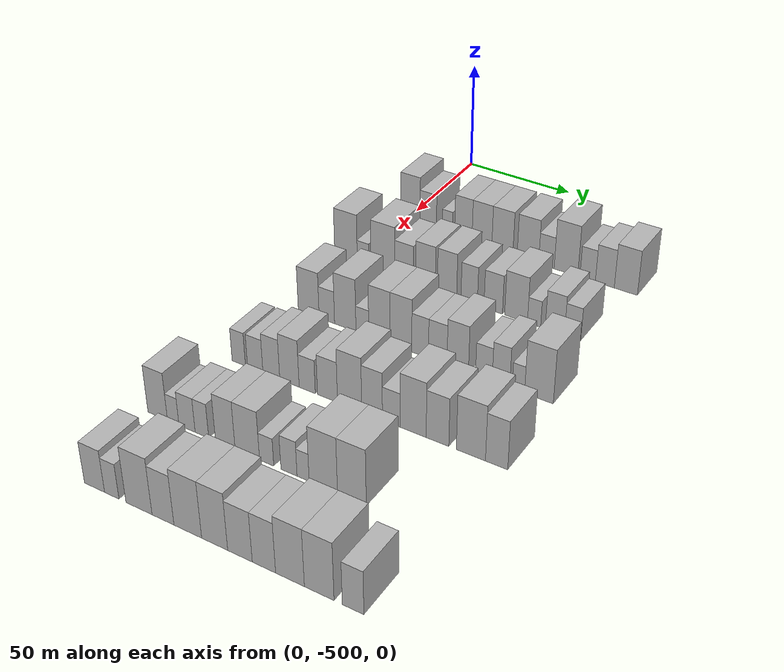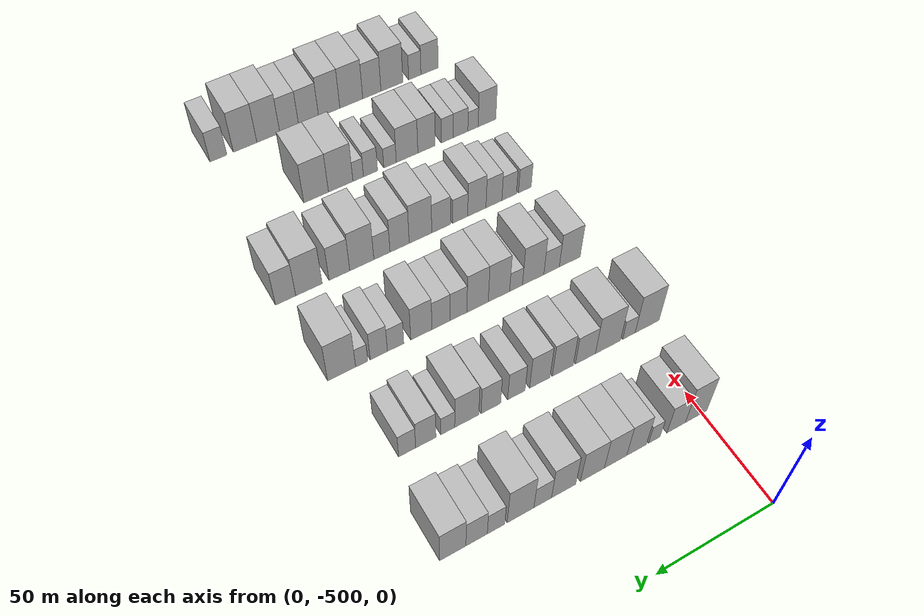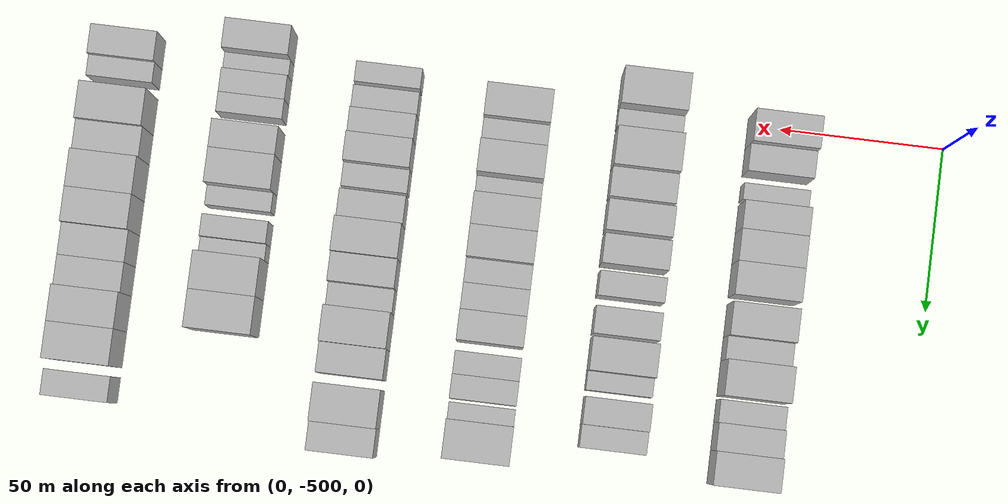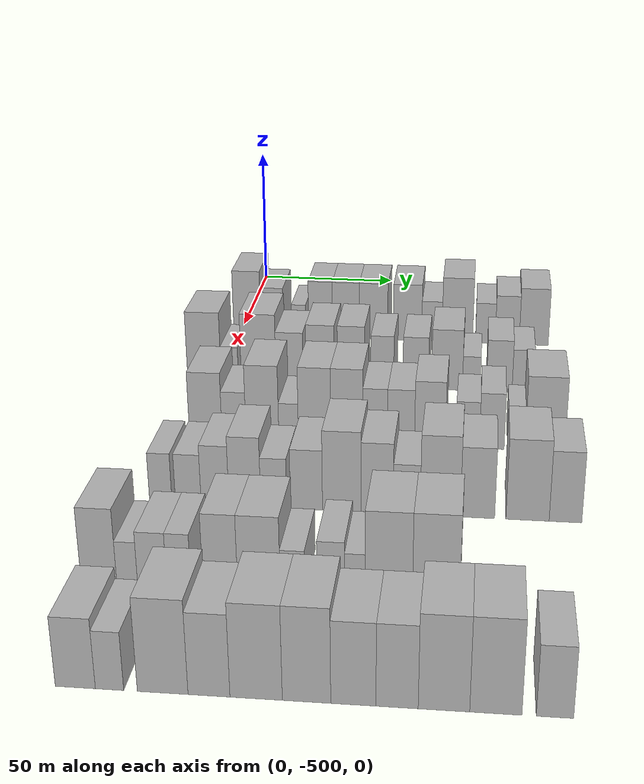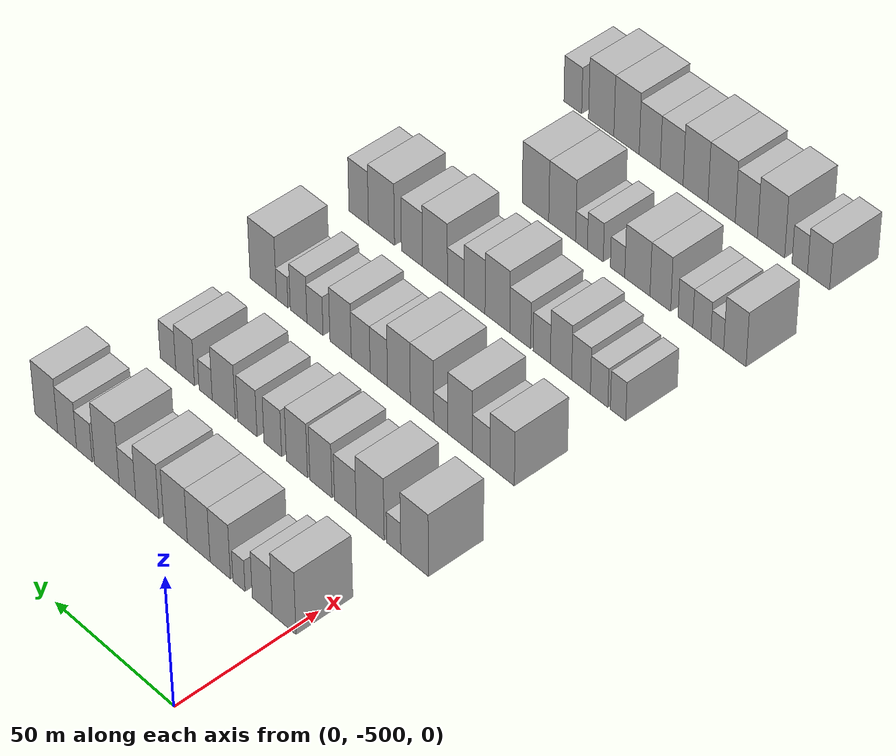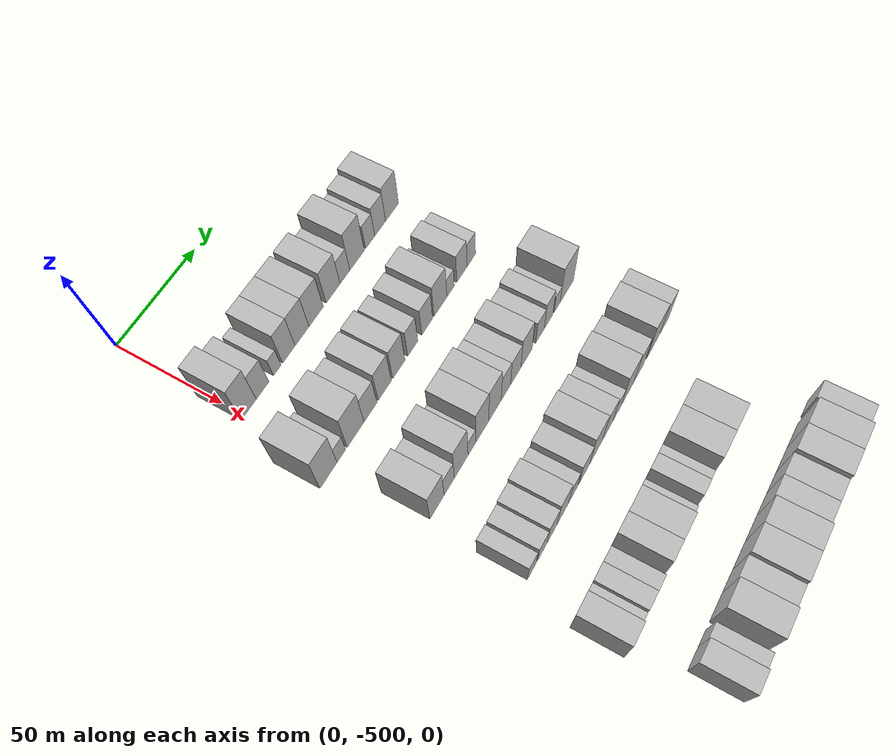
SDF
<sdf version="1.6">
 <world name="default">
  <model name="building_15">
   <static>1</static>
   <pose>50.0000 -497.2800 0 0.000000 0.000000 0.000000</pose>
   <link name="link">
    <pose>0 0 12.00 0 0 0</pose>
    <collision name="collision"><geometry><box><size>20.0000 9.7236 24.0000</size></box></geometry></collision>
    <visual name="visual">
     <cast_shadows>0</cast_shadows>
     <geometry><box><size>20.0000 9.7236 24.0000</size></box></geometry>
     <material>
      <script>
       <uri>model://HANNAS_wall/materials/scripts</uri>
       <uri>model://HANNAS_wall/materials/textures</uri>
       <name>vrc/HANNAS_wall</name>
      </script>
     </material>
    </visual>
   </link>
  </model>
  <model name="building_16">
   <static>1</static>
   <pose>50.0000 -488.3094 0 0.000000 0.000000 0.000000</pose>
   <link name="link">
    <pose>0 0 9.00 0 0 0</pose>
    <collision name="collision"><geometry><box><size>20.0000 8.2177 18.0000</size></box></geometry></collision>
    <visual name="visual">
     <cast_shadows>0</cast_shadows>
     <geometry><box><size>20.0000 8.2177 18.0000</size></box></geometry>
     <material>
      <script>
       <uri>model://HANNAS_wall/materials/scripts</uri>
       <uri>model://HANNAS_wall/materials/textures</uri>
       <name>vrc/HANNAS_wall</name>
      </script>
     </material>
    </visual>
   </link>
  </model>
  <model name="building_17">
   <static>1</static>
   <pose>50.0000 -478.6717 0 0.000000 0.000000 0.000000</pose>
   <link name="link">
    <pose>0 0 6.00 0 0 0</pose>
    <collision name="collision"><geometry><box><size>20.0000 5.0578 12.0000</size></box></geometry></collision>
    <visual name="visual">
     <cast_shadows>0</cast_shadows>
     <geometry><box><size>20.0000 5.0578 12.0000</size></box></geometry>
     <material>
      <script>
       <uri>model://HANNAS_wall/materials/scripts</uri>
       <uri>model://HANNAS_wall/materials/textures</uri>
       <name>vrc/HANNAS_wall</name>
      </script>
     </material>
    </visual>
   </link>
  </model>
  <model name="building_18">
   <static>1</static>
   <pose>50.0000 -470.8829 0 0.000000 0.000000 0.000000</pose>
   <link name="link">
    <pose>0 0 10.50 0 0 0</pose>
    <collision name="collision"><geometry><box><size>20.0000 8.5197 21.0000</size></box></geometry></collision>
    <visual name="visual">
     <cast_shadows>0</cast_shadows>
     <geometry><box><size>20.0000 8.5197 21.0000</size></box></geometry>
     <material>
      <script>
       <uri>model://HANNAS_wall/materials/scripts</uri>
       <uri>model://HANNAS_wall/materials/textures</uri>
       <name>vrc/HANNAS_wall</name>
      </script>
     </material>
    </visual>
   </link>
  </model>
  <model name="building_19">
   <static>1</static>
   <pose>50.0000 -461.8293 0 0.000000 0.000000 0.000000</pose>
   <link name="link">
    <pose>0 0 10.50 0 0 0</pose>
    <collision name="collision"><geometry><box><size>20.0000 9.5874 21.0000</size></box></geometry></collision>
    <visual name="visual">
     <cast_shadows>0</cast_shadows>
     <geometry><box><size>20.0000 9.5874 21.0000</size></box></geometry>
     <material>
      <script>
       <uri>model://HANNAS_wall/materials/scripts</uri>
       <uri>model://HANNAS_wall/materials/textures</uri>
       <name>vrc/HANNAS_wall</name>
      </script>
     </material>
    </visual>
   </link>
  </model>
  <model name="building_20">
   <static>1</static>
   <pose>50.0000 -451.9908 0 0.000000 0.000000 0.000000</pose>
   <link name="link">
    <pose>0 0 10.50 0 0 0</pose>
    <collision name="collision"><geometry><box><size>20.0000 10.0895 21.0000</size></box></geometry></collision>
    <visual name="visual">
     <cast_shadows>0</cast_shadows>
     <geometry><box><size>20.0000 10.0895 21.0000</size></box></geometry>
     <material>
      <script>
       <uri>model://HANNAS_wall/materials/scripts</uri>
       <uri>model://HANNAS_wall/materials/textures</uri>
       <name>vrc/HANNAS_wall</name>
      </script>
     </material>
    </visual>
   </link>
  </model>
  <model name="building_21">
   <static>1</static>
   <pose>50.0000 -439.9129 0 0.000000 0.000000 0.000000</pose>
   <link name="link">
    <pose>0 0 10.50 0 0 0</pose>
    <collision name="collision"><geometry><box><size>20.0000 10.0663 21.0000</size></box></geometry></collision>
    <visual name="visual">
     <cast_shadows>0</cast_shadows>
     <geometry><box><size>20.0000 10.0663 21.0000</size></box></geometry>
     <material>
      <script>
       <uri>model://HANNAS_wall/materials/scripts</uri>
       <uri>model://HANNAS_wall/materials/textures</uri>
       <name>vrc/HANNAS_wall</name>
      </script>
     </material>
    </visual>
   </link>
  </model>
  <model name="building_22">
   <static>1</static>
   <pose>50.0000 -431.2850 0 0.000000 0.000000 0.000000</pose>
   <link name="link">
    <pose>0 0 7.50 0 0 0</pose>
    <collision name="collision"><geometry><box><size>20.0000 7.1896 15.0000</size></box></geometry></collision>
    <visual name="visual">
     <cast_shadows>0</cast_shadows>
     <geometry><box><size>20.0000 7.1896 15.0000</size></box></geometry>
     <material>
      <script>
       <uri>model://HANNAS_wall/materials/scripts</uri>
       <uri>model://HANNAS_wall/materials/textures</uri>
       <name>vrc/HANNAS_wall</name>
      </script>
     </material>
    </visual>
   </link>
  </model>
  <model name="building_23">
   <static>1</static>
   <pose>50.0000 -422.3025 0 0.000000 0.000000 0.000000</pose>
   <link name="link">
    <pose>0 0 12.00 0 0 0</pose>
    <collision name="collision"><geometry><box><size>20.0000 10.7754 24.0000</size></box></geometry></collision>
    <visual name="visual">
     <cast_shadows>0</cast_shadows>
     <geometry><box><size>20.0000 10.7754 24.0000</size></box></geometry>
     <material>
      <script>
       <uri>model://HANNAS_wall/materials/scripts</uri>
       <uri>model://HANNAS_wall/materials/textures</uri>
       <name>vrc/HANNAS_wall</name>
      </script>
     </material>
    </visual>
   </link>
  </model>
  <model name="building_24">
   <static>1</static>
   <pose>50.0000 -412.4510 0 0.000000 0.000000 0.000000</pose>
   <link name="link">
    <pose>0 0 7.50 0 0 0</pose>
    <collision name="collision"><geometry><box><size>20.0000 6.9275 15.0000</size></box></geometry></collision>
    <visual name="visual">
     <cast_shadows>0</cast_shadows>
     <geometry><box><size>20.0000 6.9275 15.0000</size></box></geometry>
     <material>
      <script>
       <uri>model://HANNAS_wall/materials/scripts</uri>
       <uri>model://HANNAS_wall/materials/textures</uri>
       <name>vrc/HANNAS_wall</name>
      </script>
     </material>
    </visual>
   </link>
  </model>
  <model name="building_25">
   <static>1</static>
   <pose>50.0000 -404.7914 0 0.000000 0.000000 0.000000</pose>
   <link name="link">
    <pose>0 0 9.00 0 0 0</pose>
    <collision name="collision"><geometry><box><size>20.0000 8.3916 18.0000</size></box></geometry></collision>
    <visual name="visual">
     <cast_shadows>0</cast_shadows>
     <geometry><box><size>20.0000 8.3916 18.0000</size></box></geometry>
     <material>
      <script>
       <uri>model://HANNAS_wall/materials/scripts</uri>
       <uri>model://HANNAS_wall/materials/textures</uri>
       <name>vrc/HANNAS_wall</name>
      </script>
     </material>
    </visual>
   </link>
  </model>
  <model name="building_26">
   <static>1</static>
   <pose>50.0000 -395.5258 0 0.000000 0.000000 0.000000</pose>
   <link name="link">
    <pose>0 0 10.50 0 0 0</pose>
    <collision name="collision"><geometry><box><size>20.0000 10.1397 21.0000</size></box></geometry></collision>
    <visual name="visual">
     <cast_shadows>0</cast_shadows>
     <geometry><box><size>20.0000 10.1397 21.0000</size></box></geometry>
     <material>
      <script>
       <uri>model://HANNAS_wall/materials/scripts</uri>
       <uri>model://HANNAS_wall/materials/textures</uri>
       <name>vrc/HANNAS_wall</name>
      </script>
     </material>
    </visual>
   </link>
  </model>
  <model name="building_148">
   <static>1</static>
   <pose>90.0000 -504.5691 0 0.000000 0.000000 0.000000</pose>
   <link name="link">
    <pose>0 0 12.00 0 0 0</pose>
    <collision name="collision"><geometry><box><size>20.0000 11.2267 24.0000</size></box></geometry></collision>
    <visual name="visual">
     <cast_shadows>0</cast_shadows>
     <geometry><box><size>20.0000 11.2267 24.0000</size></box></geometry>
     <material>
      <script>
       <uri>model://HANNAS_wall/materials/scripts</uri>
       <uri>model://HANNAS_wall/materials/textures</uri>
       <name>vrc/HANNAS_wall</name>
      </script>
     </material>
    </visual>
   </link>
  </model>
  <model name="building_149">
   <static>1</static>
   <pose>90.0000 -496.0865 0 0.000000 0.000000 0.000000</pose>
   <link name="link">
    <pose>0 0 6.00 0 0 0</pose>
    <collision name="collision"><geometry><box><size>20.0000 5.7386 12.0000</size></box></geometry></collision>
    <visual name="visual">
     <cast_shadows>0</cast_shadows>
     <geometry><box><size>20.0000 5.7386 12.0000</size></box></geometry>
     <material>
      <script>
       <uri>model://HANNAS_wall/materials/scripts</uri>
       <uri>model://HANNAS_wall/materials/textures</uri>
       <name>vrc/HANNAS_wall</name>
      </script>
     </material>
    </visual>
   </link>
  </model>
  <model name="building_150">
   <static>1</static>
   <pose>90.0000 -486.4568 0 0.000000 0.000000 0.000000</pose>
   <link name="link">
    <pose>0 0 12.00 0 0 0</pose>
    <collision name="collision"><geometry><box><size>20.0000 11.5207 24.0000</size></box></geometry></collision>
    <visual name="visual">
     <cast_shadows>0</cast_shadows>
     <geometry><box><size>20.0000 11.5207 24.0000</size></box></geometry>
     <material>
      <script>
       <uri>model://HANNAS_wall/materials/scripts</uri>
       <uri>model://HANNAS_wall/materials/textures</uri>
       <name>vrc/HANNAS_wall</name>
      </script>
     </material>
    </visual>
   </link>
  </model>
  <model name="building_151">
   <static>1</static>
   <pose>90.0000 -476.1965 0 0.000000 0.000000 0.000000</pose>
   <link name="link">
    <pose>0 0 9.00 0 0 0</pose>
    <collision name="collision"><geometry><box><size>20.0000 8.9999 18.0000</size></box></geometry></collision>
    <visual name="visual">
     <cast_shadows>0</cast_shadows>
     <geometry><box><size>20.0000 8.9999 18.0000</size></box></geometry>
     <material>
      <script>
       <uri>model://HANNAS_wall/materials/scripts</uri>
       <uri>model://HANNAS_wall/materials/textures</uri>
       <name>vrc/HANNAS_wall</name>
      </script>
     </material>
    </visual>
   </link>
  </model>
  <model name="building_152">
   <static>1</static>
   <pose>90.0000 -466.0451 0 0.000000 0.000000 0.000000</pose>
   <link name="link">
    <pose>0 0 10.50 0 0 0</pose>
    <collision name="collision"><geometry><box><size>20.0000 9.3030 21.0000</size></box></geometry></collision>
    <visual name="visual">
     <cast_shadows>0</cast_shadows>
     <geometry><box><size>20.0000 9.3030 21.0000</size></box></geometry>
     <material>
      <script>
       <uri>model://HANNAS_wall/materials/scripts</uri>
       <uri>model://HANNAS_wall/materials/textures</uri>
       <name>vrc/HANNAS_wall</name>
      </script>
     </material>
    </visual>
   </link>
  </model>
  <model name="building_153">
   <static>1</static>
   <pose>90.0000 -455.9316 0 0.000000 0.000000 0.000000</pose>
   <link name="link">
    <pose>0 0 10.50 0 0 0</pose>
    <collision name="collision"><geometry><box><size>20.0000 8.9241 21.0000</size></box></geometry></collision>
    <visual name="visual">
     <cast_shadows>0</cast_shadows>
     <geometry><box><size>20.0000 8.9241 21.0000</size></box></geometry>
     <material>
      <script>
       <uri>model://HANNAS_wall/materials/scripts</uri>
       <uri>model://HANNAS_wall/materials/textures</uri>
       <name>vrc/HANNAS_wall</name>
      </script>
     </material>
    </visual>
   </link>
  </model>
  <model name="building_154">
   <static>1</static>
   <pose>90.0000 -445.7190 0 0.000000 0.000000 0.000000</pose>
   <link name="link">
    <pose>0 0 9.00 0 0 0</pose>
    <collision name="collision"><geometry><box><size>20.0000 7.5010 18.0000</size></box></geometry></collision>
    <visual name="visual">
     <cast_shadows>0</cast_shadows>
     <geometry><box><size>20.0000 7.5010 18.0000</size></box></geometry>
     <material>
      <script>
       <uri>model://HANNAS_wall/materials/scripts</uri>
       <uri>model://HANNAS_wall/materials/textures</uri>
       <name>vrc/HANNAS_wall</name>
      </script>
     </material>
    </visual>
   </link>
  </model>
  <model name="building_155">
   <static>1</static>
   <pose>90.0000 -434.8211 0 0.000000 0.000000 0.000000</pose>
   <link name="link">
    <pose>0 0 9.00 0 0 0</pose>
    <collision name="collision"><geometry><box><size>20.0000 8.2949 18.0000</size></box></geometry></collision>
    <visual name="visual">
     <cast_shadows>0</cast_shadows>
     <geometry><box><size>20.0000 8.2949 18.0000</size></box></geometry>
     <material>
      <script>
       <uri>model://HANNAS_wall/materials/scripts</uri>
       <uri>model://HANNAS_wall/materials/textures</uri>
       <name>vrc/HANNAS_wall</name>
      </script>
     </material>
    </visual>
   </link>
  </model>
  <model name="building_156">
   <static>1</static>
   <pose>90.0000 -424.6447 0 0.000000 0.000000 0.000000</pose>
   <link name="link">
    <pose>0 0 10.50 0 0 0</pose>
    <collision name="collision"><geometry><box><size>20.0000 10.0580 21.0000</size></box></geometry></collision>
    <visual name="visual">
     <cast_shadows>0</cast_shadows>
     <geometry><box><size>20.0000 10.0580 21.0000</size></box></geometry>
     <material>
      <script>
       <uri>model://HANNAS_wall/materials/scripts</uri>
       <uri>model://HANNAS_wall/materials/textures</uri>
       <name>vrc/HANNAS_wall</name>
      </script>
     </material>
    </visual>
   </link>
  </model>
  <model name="building_157">
   <static>1</static>
   <pose>90.0000 -416.7360 0 0.000000 0.000000 0.000000</pose>
   <link name="link">
    <pose>0 0 6.00 0 0 0</pose>
    <collision name="collision"><geometry><box><size>20.0000 5.7593 12.0000</size></box></geometry></collision>
    <visual name="visual">
     <cast_shadows>0</cast_shadows>
     <geometry><box><size>20.0000 5.7593 12.0000</size></box></geometry>
     <material>
      <script>
       <uri>model://HANNAS_wall/materials/scripts</uri>
       <uri>model://HANNAS_wall/materials/textures</uri>
       <name>vrc/HANNAS_wall</name>
      </script>
     </material>
    </visual>
   </link>
  </model>
  <model name="building_158">
   <static>1</static>
   <pose>90.0000 -407.7285 0 0.000000 0.000000 0.000000</pose>
   <link name="link">
    <pose>0 0 9.00 0 0 0</pose>
    <collision name="collision"><geometry><box><size>20.0000 8.2558 18.0000</size></box></geometry></collision>
    <visual name="visual">
     <cast_shadows>0</cast_shadows>
     <geometry><box><size>20.0000 8.2558 18.0000</size></box></geometry>
     <material>
      <script>
       <uri>model://HANNAS_wall/materials/scripts</uri>
       <uri>model://HANNAS_wall/materials/textures</uri>
       <name>vrc/HANNAS_wall</name>
      </script>
     </material>
    </visual>
   </link>
  </model>
  <model name="building_159">
   <static>1</static>
   <pose>90.0000 -400.1436 0 0.000000 0.000000 0.000000</pose>
   <link name="link">
    <pose>0 0 7.50 0 0 0</pose>
    <collision name="collision"><geometry><box><size>20.0000 6.9140 15.0000</size></box></geometry></collision>
    <visual name="visual">
     <cast_shadows>0</cast_shadows>
     <geometry><box><size>20.0000 6.9140 15.0000</size></box></geometry>
     <material>
      <script>
       <uri>model://HANNAS_wall/materials/scripts</uri>
       <uri>model://HANNAS_wall/materials/textures</uri>
       <name>vrc/HANNAS_wall</name>
      </script>
     </material>
    </visual>
   </link>
  </model>
  <model name="building_279">
   <static>1</static>
   <pose>130.0000 -495.8659 0 0.000000 0.000000 0.000000</pose>
   <link name="link">
    <pose>0 0 10.50 0 0 0</pose>
    <collision name="collision"><geometry><box><size>20.0000 9.9611 21.0000</size></box></geometry></collision>
    <visual name="visual">
     <cast_shadows>0</cast_shadows>
     <geometry><box><size>20.0000 9.9611 21.0000</size></box></geometry>
     <material>
      <script>
       <uri>model://HANNAS_wall/materials/scripts</uri>
       <uri>model://HANNAS_wall/materials/textures</uri>
       <name>vrc/HANNAS_wall</name>
      </script>
     </material>
    </visual>
   </link>
  </model>
  <model name="building_280">
   <static>1</static>
   <pose>130.0000 -487.2373 0 0.000000 0.000000 0.000000</pose>
   <link name="link">
    <pose>0 0 7.50 0 0 0</pose>
    <collision name="collision"><geometry><box><size>20.0000 7.2961 15.0000</size></box></geometry></collision>
    <visual name="visual">
     <cast_shadows>0</cast_shadows>
     <geometry><box><size>20.0000 7.2961 15.0000</size></box></geometry>
     <material>
      <script>
       <uri>model://HANNAS_wall/materials/scripts</uri>
       <uri>model://HANNAS_wall/materials/textures</uri>
       <name>vrc/HANNAS_wall</name>
      </script>
     </material>
    </visual>
   </link>
  </model>
  <model name="building_281">
   <static>1</static>
   <pose>130.0000 -478.6068 0 0.000000 0.000000 0.000000</pose>
   <link name="link">
    <pose>0 0 12.00 0 0 0</pose>
    <collision name="collision"><geometry><box><size>20.0000 9.9650 24.0000</size></box></geometry></collision>
    <visual name="visual">
     <cast_shadows>0</cast_shadows>
     <geometry><box><size>20.0000 9.9650 24.0000</size></box></geometry>
     <material>
      <script>
       <uri>model://HANNAS_wall/materials/scripts</uri>
       <uri>model://HANNAS_wall/materials/textures</uri>
       <name>vrc/HANNAS_wall</name>
      </script>
     </material>
    </visual>
   </link>
  </model>
  <model name="building_282">
   <static>1</static>
   <pose>130.0000 -470.6708 0 0.000000 0.000000 0.000000</pose>
   <link name="link">
    <pose>0 0 6.00 0 0 0</pose>
    <collision name="collision"><geometry><box><size>20.0000 5.9069 12.0000</size></box></geometry></collision>
    <visual name="visual">
     <cast_shadows>0</cast_shadows>
     <geometry><box><size>20.0000 5.9069 12.0000</size></box></geometry>
     <material>
      <script>
       <uri>model://HANNAS_wall/materials/scripts</uri>
       <uri>model://HANNAS_wall/materials/textures</uri>
       <name>vrc/HANNAS_wall</name>
      </script>
     </material>
    </visual>
   </link>
  </model>
  <model name="building_283">
   <static>1</static>
   <pose>130.0000 -462.8556 0 0.000000 0.000000 0.000000</pose>
   <link name="link">
    <pose>0 0 12.00 0 0 0</pose>
    <collision name="collision"><geometry><box><size>20.0000 9.7236 24.0000</size></box></geometry></collision>
    <visual name="visual">
     <cast_shadows>0</cast_shadows>
     <geometry><box><size>20.0000 9.7236 24.0000</size></box></geometry>
     <material>
      <script>
       <uri>model://HANNAS_wall/materials/scripts</uri>
       <uri>model://HANNAS_wall/materials/textures</uri>
       <name>vrc/HANNAS_wall</name>
      </script>
     </material>
    </visual>
   </link>
  </model>
  <model name="building_284">
   <static>1</static>
   <pose>130.0000 -453.1794 0 0.000000 0.000000 0.000000</pose>
   <link name="link">
    <pose>0 0 12.00 0 0 0</pose>
    <collision name="collision"><geometry><box><size>20.0000 9.6288 24.0000</size></box></geometry></collision>
    <visual name="visual">
     <cast_shadows>0</cast_shadows>
     <geometry><box><size>20.0000 9.6288 24.0000</size></box></geometry>
     <material>
      <script>
       <uri>model://HANNAS_wall/materials/scripts</uri>
       <uri>model://HANNAS_wall/materials/textures</uri>
       <name>vrc/HANNAS_wall</name>
      </script>
     </material>
    </visual>
   </link>
  </model>
  <model name="building_285">
   <static>1</static>
   <pose>130.0000 -444.6815 0 0.000000 0.000000 0.000000</pose>
   <link name="link">
    <pose>0 0 9.00 0 0 0</pose>
    <collision name="collision"><geometry><box><size>20.0000 7.3669 18.0000</size></box></geometry></collision>
    <visual name="visual">
     <cast_shadows>0</cast_shadows>
     <geometry><box><size>20.0000 7.3669 18.0000</size></box></geometry>
     <material>
      <script>
       <uri>model://HANNAS_wall/materials/scripts</uri>
       <uri>model://HANNAS_wall/materials/textures</uri>
       <name>vrc/HANNAS_wall</name>
      </script>
     </material>
    </visual>
   </link>
  </model>
  <model name="building_286">
   <static>1</static>
   <pose>130.0000 -436.9607 0 0.000000 0.000000 0.000000</pose>
   <link name="link">
    <pose>0 0 9.00 0 0 0</pose>
    <collision name="collision"><geometry><box><size>20.0000 8.0745 18.0000</size></box></geometry></collision>
    <visual name="visual">
     <cast_shadows>0</cast_shadows>
     <geometry><box><size>20.0000 8.0745 18.0000</size></box></geometry>
     <material>
      <script>
       <uri>model://HANNAS_wall/materials/scripts</uri>
       <uri>model://HANNAS_wall/materials/textures</uri>
       <name>vrc/HANNAS_wall</name>
      </script>
     </material>
    </visual>
   </link>
  </model>
  <model name="building_287">
   <static>1</static>
   <pose>130.0000 -428.3294 0 0.000000 0.000000 0.000000</pose>
   <link name="link">
    <pose>0 0 10.50 0 0 0</pose>
    <collision name="collision"><geometry><box><size>20.0000 9.1881 21.0000</size></box></geometry></collision>
    <visual name="visual">
     <cast_shadows>0</cast_shadows>
     <geometry><box><size>20.0000 9.1881 21.0000</size></box></geometry>
     <material>
      <script>
       <uri>model://HANNAS_wall/materials/scripts</uri>
       <uri>model://HANNAS_wall/materials/textures</uri>
       <name>vrc/HANNAS_wall</name>
      </script>
     </material>
    </visual>
   </link>
  </model>
  <model name="building_288">
   <static>1</static>
   <pose>130.0000 -417.2268 0 0.000000 0.000000 0.000000</pose>
   <link name="link">
    <pose>0 0 7.50 0 0 0</pose>
    <collision name="collision"><geometry><box><size>20.0000 7.0171 15.0000</size></box></geometry></collision>
    <visual name="visual">
     <cast_shadows>0</cast_shadows>
     <geometry><box><size>20.0000 7.0171 15.0000</size></box></geometry>
     <material>
      <script>
       <uri>model://HANNAS_wall/materials/scripts</uri>
       <uri>model://HANNAS_wall/materials/textures</uri>
       <name>vrc/HANNAS_wall</name>
      </script>
     </material>
    </visual>
   </link>
  </model>
  <model name="building_289">
   <static>1</static>
   <pose>130.0000 -410.0740 0 0.000000 0.000000 0.000000</pose>
   <link name="link">
    <pose>0 0 9.00 0 0 0</pose>
    <collision name="collision"><geometry><box><size>20.0000 7.2885 18.0000</size></box></geometry></collision>
    <visual name="visual">
     <cast_shadows>0</cast_shadows>
     <geometry><box><size>20.0000 7.2885 18.0000</size></box></geometry>
     <material>
      <script>
       <uri>model://HANNAS_wall/materials/scripts</uri>
       <uri>model://HANNAS_wall/materials/textures</uri>
       <name>vrc/HANNAS_wall</name>
      </script>
     </material>
    </visual>
   </link>
  </model>
  <model name="building_290">
   <static>1</static>
   <pose>130.0000 -402.8781 0 0.000000 0.000000 0.000000</pose>
   <link name="link">
    <pose>0 0 6.00 0 0 0</pose>
    <collision name="collision"><geometry><box><size>20.0000 5.1035 12.0000</size></box></geometry></collision>
    <visual name="visual">
     <cast_shadows>0</cast_shadows>
     <geometry><box><size>20.0000 5.1035 12.0000</size></box></geometry>
     <material>
      <script>
       <uri>model://HANNAS_wall/materials/scripts</uri>
       <uri>model://HANNAS_wall/materials/textures</uri>
       <name>vrc/HANNAS_wall</name>
      </script>
     </material>
    </visual>
   </link>
  </model>
  <model name="building_291">
   <static>1</static>
   <pose>130.0000 -394.5077 0 0.000000 0.000000 0.000000</pose>
   <link name="link">
    <pose>0 0 12.00 0 0 0</pose>
    <collision name="collision"><geometry><box><size>20.0000 11.6373 24.0000</size></box></geometry></collision>
    <visual name="visual">
     <cast_shadows>0</cast_shadows>
     <geometry><box><size>20.0000 11.6373 24.0000</size></box></geometry>
     <material>
      <script>
       <uri>model://HANNAS_wall/materials/scripts</uri>
       <uri>model://HANNAS_wall/materials/textures</uri>
       <name>vrc/HANNAS_wall</name>
      </script>
     </material>
    </visual>
   </link>
  </model>
  <model name="building_412">
   <static>1</static>
   <pose>170.0000 -500.1023 0 0.000000 0.000000 0.000000</pose>
   <link name="link">
    <pose>0 0 7.50 0 0 0</pose>
    <collision name="collision"><geometry><box><size>20.0000 6.2177 15.0000</size></box></geometry></collision>
    <visual name="visual">
     <cast_shadows>0</cast_shadows>
     <geometry><box><size>20.0000 6.2177 15.0000</size></box></geometry>
     <material>
      <script>
       <uri>model://HANNAS_wall/materials/scripts</uri>
       <uri>model://HANNAS_wall/materials/textures</uri>
       <name>vrc/HANNAS_wall</name>
      </script>
     </material>
    </visual>
   </link>
  </model>
  <model name="building_413">
   <static>1</static>
   <pose>170.0000 -492.4420 0 0.000000 0.000000 0.000000</pose>
   <link name="link">
    <pose>0 0 7.50 0 0 0</pose>
    <collision name="collision"><geometry><box><size>20.0000 7.1031 15.0000</size></box></geometry></collision>
    <visual name="visual">
     <cast_shadows>0</cast_shadows>
     <geometry><box><size>20.0000 7.1031 15.0000</size></box></geometry>
     <material>
      <script>
       <uri>model://HANNAS_wall/materials/scripts</uri>
       <uri>model://HANNAS_wall/materials/textures</uri>
       <name>vrc/HANNAS_wall</name>
      </script>
     </material>
    </visual>
   </link>
  </model>
  <model name="building_414">
   <static>1</static>
   <pose>170.0000 -485.0420 0 0.000000 0.000000 0.000000</pose>
   <link name="link">
    <pose>0 0 9.00 0 0 0</pose>
    <collision name="collision"><geometry><box><size>20.0000 7.6967 18.0000</size></box></geometry></collision>
    <visual name="visual">
     <cast_shadows>0</cast_shadows>
     <geometry><box><size>20.0000 7.6967 18.0000</size></box></geometry>
     <material>
      <script>
       <uri>model://HANNAS_wall/materials/scripts</uri>
       <uri>model://HANNAS_wall/materials/textures</uri>
       <name>vrc/HANNAS_wall</name>
      </script>
     </material>
    </visual>
   </link>
  </model>
  <model name="building_415">
   <static>1</static>
   <pose>170.0000 -476.8262 0 0.000000 0.000000 0.000000</pose>
   <link name="link">
    <pose>0 0 10.50 0 0 0</pose>
    <collision name="collision"><geometry><box><size>20.0000 8.7349 21.0000</size></box></geometry></collision>
    <visual name="visual">
     <cast_shadows>0</cast_shadows>
     <geometry><box><size>20.0000 8.7349 21.0000</size></box></geometry>
     <material>
      <script>
       <uri>model://HANNAS_wall/materials/scripts</uri>
       <uri>model://HANNAS_wall/materials/textures</uri>
       <name>vrc/HANNAS_wall</name>
      </script>
     </material>
    </visual>
   </link>
  </model>
  <model name="building_416">
   <static>1</static>
   <pose>170.0000 -468.8783 0 0.000000 0.000000 0.000000</pose>
   <link name="link">
    <pose>0 0 7.50 0 0 0</pose>
    <collision name="collision"><geometry><box><size>20.0000 7.1609 15.0000</size></box></geometry></collision>
    <visual name="visual">
     <cast_shadows>0</cast_shadows>
     <geometry><box><size>20.0000 7.1609 15.0000</size></box></geometry>
     <material>
      <script>
       <uri>model://HANNAS_wall/materials/scripts</uri>
       <uri>model://HANNAS_wall/materials/textures</uri>
       <name>vrc/HANNAS_wall</name>
      </script>
     </material>
    </visual>
   </link>
  </model>
  <model name="building_417">
   <static>1</static>
   <pose>170.0000 -459.9349 0 0.000000 0.000000 0.000000</pose>
   <link name="link">
    <pose>0 0 9.00 0 0 0</pose>
    <collision name="collision"><geometry><box><size>20.0000 8.7257 18.0000</size></box></geometry></collision>
    <visual name="visual">
     <cast_shadows>0</cast_shadows>
     <geometry><box><size>20.0000 8.7257 18.0000</size></box></geometry>
     <material>
      <script>
       <uri>model://HANNAS_wall/materials/scripts</uri>
       <uri>model://HANNAS_wall/materials/textures</uri>
       <name>vrc/HANNAS_wall</name>
      </script>
     </material>
    </visual>
   </link>
  </model>
  <model name="building_418">
   <static>1</static>
   <pose>170.0000 -450.3562 0 0.000000 0.000000 0.000000</pose>
   <link name="link">
    <pose>0 0 12.00 0 0 0</pose>
    <collision name="collision"><geometry><box><size>20.0000 10.4318 24.0000</size></box></geometry></collision>
    <visual name="visual">
     <cast_shadows>0</cast_shadows>
     <geometry><box><size>20.0000 10.4318 24.0000</size></box></geometry>
     <material>
      <script>
       <uri>model://HANNAS_wall/materials/scripts</uri>
       <uri>model://HANNAS_wall/materials/textures</uri>
       <name>vrc/HANNAS_wall</name>
      </script>
     </material>
    </visual>
   </link>
  </model>
  <model name="building_419">
   <static>1</static>
   <pose>170.0000 -440.7720 0 0.000000 0.000000 0.000000</pose>
   <link name="link">
    <pose>0 0 10.50 0 0 0</pose>
    <collision name="collision"><geometry><box><size>20.0000 8.7366 21.0000</size></box></geometry></collision>
    <visual name="visual">
     <cast_shadows>0</cast_shadows>
     <geometry><box><size>20.0000 8.7366 21.0000</size></box></geometry>
     <material>
      <script>
       <uri>model://HANNAS_wall/materials/scripts</uri>
       <uri>model://HANNAS_wall/materials/textures</uri>
       <name>vrc/HANNAS_wall</name>
      </script>
     </material>
    </visual>
   </link>
  </model>
  <model name="building_420">
   <static>1</static>
   <pose>170.0000 -432.7649 0 0.000000 0.000000 0.000000</pose>
   <link name="link">
    <pose>0 0 7.50 0 0 0</pose>
    <collision name="collision"><geometry><box><size>20.0000 7.2775 15.0000</size></box></geometry></collision>
    <visual name="visual">
     <cast_shadows>0</cast_shadows>
     <geometry><box><size>20.0000 7.2775 15.0000</size></box></geometry>
     <material>
      <script>
       <uri>model://HANNAS_wall/materials/scripts</uri>
       <uri>model://HANNAS_wall/materials/textures</uri>
       <name>vrc/HANNAS_wall</name>
      </script>
     </material>
    </visual>
   </link>
  </model>
  <model name="building_421">
   <static>1</static>
   <pose>170.0000 -423.7435 0 0.000000 0.000000 0.000000</pose>
   <link name="link">
    <pose>0 0 12.00 0 0 0</pose>
    <collision name="collision"><geometry><box><size>20.0000 10.7653 24.0000</size></box></geometry></collision>
    <visual name="visual">
     <cast_shadows>0</cast_shadows>
     <geometry><box><size>20.0000 10.7653 24.0000</size></box></geometry>
     <material>
      <script>
       <uri>model://HANNAS_wall/materials/scripts</uri>
       <uri>model://HANNAS_wall/materials/textures</uri>
       <name>vrc/HANNAS_wall</name>
      </script>
     </material>
    </visual>
   </link>
  </model>
  <model name="building_422">
   <static>1</static>
   <pose>170.0000 -413.7979 0 0.000000 0.000000 0.000000</pose>
   <link name="link">
    <pose>0 0 10.50 0 0 0</pose>
    <collision name="collision"><geometry><box><size>20.0000 9.1258 21.0000</size></box></geometry></collision>
    <visual name="visual">
     <cast_shadows>0</cast_shadows>
     <geometry><box><size>20.0000 9.1258 21.0000</size></box></geometry>
     <material>
      <script>
       <uri>model://HANNAS_wall/materials/scripts</uri>
       <uri>model://HANNAS_wall/materials/textures</uri>
       <name>vrc/HANNAS_wall</name>
      </script>
     </material>
    </visual>
   </link>
  </model>
  <model name="building_423">
   <static>1</static>
   <pose>170.0000 -400.5086 0 0.000000 0.000000 0.000000</pose>
   <link name="link">
    <pose>0 0 12.00 0 0 0</pose>
    <collision name="collision"><geometry><box><size>20.0000 11.4529 24.0000</size></box></geometry></collision>
    <visual name="visual">
     <cast_shadows>0</cast_shadows>
     <geometry><box><size>20.0000 11.4529 24.0000</size></box></geometry>
     <material>
      <script>
       <uri>model://HANNAS_wall/materials/scripts</uri>
       <uri>model://HANNAS_wall/materials/textures</uri>
       <name>vrc/HANNAS_wall</name>
      </script>
     </material>
    </visual>
   </link>
  </model>
  <model name="building_424">
   <static>1</static>
   <pose>170.0000 -390.4740 0 0.000000 0.000000 0.000000</pose>
   <link name="link">
    <pose>0 0 10.50 0 0 0</pose>
    <collision name="collision"><geometry><box><size>20.0000 8.6164 21.0000</size></box></geometry></collision>
    <visual name="visual">
     <cast_shadows>0</cast_shadows>
     <geometry><box><size>20.0000 8.6164 21.0000</size></box></geometry>
     <material>
      <script>
       <uri>model://HANNAS_wall/materials/scripts</uri>
       <uri>model://HANNAS_wall/materials/textures</uri>
       <name>vrc/HANNAS_wall</name>
      </script>
     </material>
    </visual>
   </link>
  </model>
  <model name="building_548">
   <static>1</static>
   <pose>210.0000 -505.9771 0 0.000000 0.000000 0.000000</pose>
   <link name="link">
    <pose>0 0 10.50 0 0 0</pose>
    <collision name="collision"><geometry><box><size>20.0000 8.9672 21.0000</size></box></geometry></collision>
    <visual name="visual">
     <cast_shadows>0</cast_shadows>
     <geometry><box><size>20.0000 8.9672 21.0000</size></box></geometry>
     <material>
      <script>
       <uri>model://HANNAS_wall/materials/scripts</uri>
       <uri>model://HANNAS_wall/materials/textures</uri>
       <name>vrc/HANNAS_wall</name>
      </script>
     </material>
    </visual>
   </link>
  </model>
  <model name="building_549">
   <static>1</static>
   <pose>210.0000 -498.8880 0 0.000000 0.000000 0.000000</pose>
   <link name="link">
    <pose>0 0 6.00 0 0 0</pose>
    <collision name="collision"><geometry><box><size>20.0000 5.2111 12.0000</size></box></geometry></collision>
    <visual name="visual">
     <cast_shadows>0</cast_shadows>
     <geometry><box><size>20.0000 5.2111 12.0000</size></box></geometry>
     <material>
      <script>
       <uri>model://HANNAS_wall/materials/scripts</uri>
       <uri>model://HANNAS_wall/materials/textures</uri>
       <name>vrc/HANNAS_wall</name>
      </script>
     </material>
    </visual>
   </link>
  </model>
  <model name="building_550">
   <static>1</static>
   <pose>210.0000 -492.6427 0 0.000000 0.000000 0.000000</pose>
   <link name="link">
    <pose>0 0 7.50 0 0 0</pose>
    <collision name="collision"><geometry><box><size>20.0000 7.2796 15.0000</size></box></geometry></collision>
    <visual name="visual">
     <cast_shadows>0</cast_shadows>
     <geometry><box><size>20.0000 7.2796 15.0000</size></box></geometry>
     <material>
      <script>
       <uri>model://HANNAS_wall/materials/scripts</uri>
       <uri>model://HANNAS_wall/materials/textures</uri>
       <name>vrc/HANNAS_wall</name>
      </script>
     </material>
    </visual>
   </link>
  </model>
  <model name="building_551">
   <static>1</static>
   <pose>210.0000 -485.9930 0 0.000000 0.000000 0.000000</pose>
   <link name="link">
    <pose>0 0 7.50 0 0 0</pose>
    <collision name="collision"><geometry><box><size>20.0000 6.0196 15.0000</size></box></geometry></collision>
    <visual name="visual">
     <cast_shadows>0</cast_shadows>
     <geometry><box><size>20.0000 6.0196 15.0000</size></box></geometry>
     <material>
      <script>
       <uri>model://HANNAS_wall/materials/scripts</uri>
       <uri>model://HANNAS_wall/materials/textures</uri>
       <name>vrc/HANNAS_wall</name>
      </script>
     </material>
    </visual>
   </link>
  </model>
  <model name="building_552">
   <static>1</static>
   <pose>210.0000 -475.7218 0 0.000000 0.000000 0.000000</pose>
   <link name="link">
    <pose>0 0 10.50 0 0 0</pose>
    <collision name="collision"><geometry><box><size>20.0000 8.5228 21.0000</size></box></geometry></collision>
    <visual name="visual">
     <cast_shadows>0</cast_shadows>
     <geometry><box><size>20.0000 8.5228 21.0000</size></box></geometry>
     <material>
      <script>
       <uri>model://HANNAS_wall/materials/scripts</uri>
       <uri>model://HANNAS_wall/materials/textures</uri>
       <name>vrc/HANNAS_wall</name>
      </script>
     </material>
    </visual>
   </link>
  </model>
  <model name="building_553">
   <static>1</static>
   <pose>210.0000 -466.2288 0 0.000000 0.000000 0.000000</pose>
   <link name="link">
    <pose>0 0 10.50 0 0 0</pose>
    <collision name="collision"><geometry><box><size>20.0000 10.4633 21.0000</size></box></geometry></collision>
    <visual name="visual">
     <cast_shadows>0</cast_shadows>
     <geometry><box><size>20.0000 10.4633 21.0000</size></box></geometry>
     <material>
      <script>
       <uri>model://HANNAS_wall/materials/scripts</uri>
       <uri>model://HANNAS_wall/materials/textures</uri>
       <name>vrc/HANNAS_wall</name>
      </script>
     </material>
    </visual>
   </link>
  </model>
  <model name="building_554">
   <static>1</static>
   <pose>210.0000 -458.0046 0 0.000000 0.000000 0.000000</pose>
   <link name="link">
    <pose>0 0 6.00 0 0 0</pose>
    <collision name="collision"><geometry><box><size>20.0000 5.9850 12.0000</size></box></geometry></collision>
    <visual name="visual">
     <cast_shadows>0</cast_shadows>
     <geometry><box><size>20.0000 5.9850 12.0000</size></box></geometry>
     <material>
      <script>
       <uri>model://HANNAS_wall/materials/scripts</uri>
       <uri>model://HANNAS_wall/materials/textures</uri>
       <name>vrc/HANNAS_wall</name>
      </script>
     </material>
    </visual>
   </link>
  </model>
  <model name="building_555">
   <static>1</static>
   <pose>210.0000 -448.6737 0 0.000000 0.000000 0.000000</pose>
   <link name="link">
    <pose>0 0 7.50 0 0 0</pose>
    <collision name="collision"><geometry><box><size>20.0000 6.6768 15.0000</size></box></geometry></collision>
    <visual name="visual">
     <cast_shadows>0</cast_shadows>
     <geometry><box><size>20.0000 6.6768 15.0000</size></box></geometry>
     <material>
      <script>
       <uri>model://HANNAS_wall/materials/scripts</uri>
       <uri>model://HANNAS_wall/materials/textures</uri>
       <name>vrc/HANNAS_wall</name>
      </script>
     </material>
    </visual>
   </link>
  </model>
  <model name="building_556">
   <static>1</static>
   <pose>210.0000 -442.8526 0 0.000000 0.000000 0.000000</pose>
   <link name="link">
    <pose>0 0 6.00 0 0 0</pose>
    <collision name="collision"><geometry><box><size>20.0000 4.9655 12.0000</size></box></geometry></collision>
    <visual name="visual">
     <cast_shadows>0</cast_shadows>
     <geometry><box><size>20.0000 4.9655 12.0000</size></box></geometry>
     <material>
      <script>
       <uri>model://HANNAS_wall/materials/scripts</uri>
       <uri>model://HANNAS_wall/materials/textures</uri>
       <name>vrc/HANNAS_wall</name>
      </script>
     </material>
    </visual>
   </link>
  </model>
  <model name="building_557">
   <static>1</static>
   <pose>210.0000 -434.6507 0 0.000000 0.000000 0.000000</pose>
   <link name="link">
    <pose>0 0 12.00 0 0 0</pose>
    <collision name="collision"><geometry><box><size>20.0000 11.4383 24.0000</size></box></geometry></collision>
    <visual name="visual">
     <cast_shadows>0</cast_shadows>
     <geometry><box><size>20.0000 11.4383 24.0000</size></box></geometry>
     <material>
      <script>
       <uri>model://HANNAS_wall/materials/scripts</uri>
       <uri>model://HANNAS_wall/materials/textures</uri>
       <name>vrc/HANNAS_wall</name>
      </script>
     </material>
    </visual>
   </link>
  </model>
  <model name="building_558">
   <static>1</static>
   <pose>210.0000 -423.2478 0 0.000000 0.000000 0.000000</pose>
   <link name="link">
    <pose>0 0 12.00 0 0 0</pose>
    <collision name="collision"><geometry><box><size>20.0000 11.3674 24.0000</size></box></geometry></collision>
    <visual name="visual">
     <cast_shadows>0</cast_shadows>
     <geometry><box><size>20.0000 11.3674 24.0000</size></box></geometry>
     <material>
      <script>
       <uri>model://HANNAS_wall/materials/scripts</uri>
       <uri>model://HANNAS_wall/materials/textures</uri>
       <name>vrc/HANNAS_wall</name>
      </script>
     </material>
    </visual>
   </link>
  </model>
  <model name="building_681">
   <static>1</static>
   <pose>250.0000 -499.8129 0 0.000000 0.000000 0.000000</pose>
   <link name="link">
    <pose>0 0 9.00 0 0 0</pose>
    <collision name="collision"><geometry><box><size>20.0000 8.8932 18.0000</size></box></geometry></collision>
    <visual name="visual">
     <cast_shadows>0</cast_shadows>
     <geometry><box><size>20.0000 8.8932 18.0000</size></box></geometry>
     <material>
      <script>
       <uri>model://HANNAS_wall/materials/scripts</uri>
       <uri>model://HANNAS_wall/materials/textures</uri>
       <name>vrc/HANNAS_wall</name>
      </script>
     </material>
    </visual>
   </link>
  </model>
  <model name="building_682">
   <static>1</static>
   <pose>250.0000 -492.2318 0 0.000000 0.000000 0.000000</pose>
   <link name="link">
    <pose>0 0 7.50 0 0 0</pose>
    <collision name="collision"><geometry><box><size>20.0000 6.2691 15.0000</size></box></geometry></collision>
    <visual name="visual">
     <cast_shadows>0</cast_shadows>
     <geometry><box><size>20.0000 6.2691 15.0000</size></box></geometry>
     <material>
      <script>
       <uri>model://HANNAS_wall/materials/scripts</uri>
       <uri>model://HANNAS_wall/materials/textures</uri>
       <name>vrc/HANNAS_wall</name>
      </script>
     </material>
    </visual>
   </link>
  </model>
  <model name="building_683">
   <static>1</static>
   <pose>250.0000 -480.5298 0 0.000000 0.000000 0.000000</pose>
   <link name="link">
    <pose>0 0 12.00 0 0 0</pose>
    <collision name="collision"><geometry><box><size>20.0000 11.1349 24.0000</size></box></geometry></collision>
    <visual name="visual">
     <cast_shadows>0</cast_shadows>
     <geometry><box><size>20.0000 11.1349 24.0000</size></box></geometry>
     <material>
      <script>
       <uri>model://HANNAS_wall/materials/scripts</uri>
       <uri>model://HANNAS_wall/materials/textures</uri>
       <name>vrc/HANNAS_wall</name>
      </script>
     </material>
    </visual>
   </link>
  </model>
  <model name="building_684">
   <static>1</static>
   <pose>250.0000 -470.3894 0 0.000000 0.000000 0.000000</pose>
   <link name="link">
    <pose>0 0 10.50 0 0 0</pose>
    <collision name="collision"><geometry><box><size>20.0000 9.1457 21.0000</size></box></geometry></collision>
    <visual name="visual">
     <cast_shadows>0</cast_shadows>
     <geometry><box><size>20.0000 9.1457 21.0000</size></box></geometry>
     <material>
      <script>
       <uri>model://HANNAS_wall/materials/scripts</uri>
       <uri>model://HANNAS_wall/materials/textures</uri>
       <name>vrc/HANNAS_wall</name>
      </script>
     </material>
    </visual>
   </link>
  </model>
  <model name="building_685">
   <static>1</static>
   <pose>250.0000 -460.1438 0 0.000000 0.000000 0.000000</pose>
   <link name="link">
    <pose>0 0 12.00 0 0 0</pose>
    <collision name="collision"><geometry><box><size>20.0000 11.3456 24.0000</size></box></geometry></collision>
    <visual name="visual">
     <cast_shadows>0</cast_shadows>
     <geometry><box><size>20.0000 11.3456 24.0000</size></box></geometry>
     <material>
      <script>
       <uri>model://HANNAS_wall/materials/scripts</uri>
       <uri>model://HANNAS_wall/materials/textures</uri>
       <name>vrc/HANNAS_wall</name>
      </script>
     </material>
    </visual>
   </link>
  </model>
  <model name="building_686">
   <static>1</static>
   <pose>250.0000 -449.2580 0 0.000000 0.000000 0.000000</pose>
   <link name="link">
    <pose>0 0 12.00 0 0 0</pose>
    <collision name="collision"><geometry><box><size>20.0000 10.4259 24.0000</size></box></geometry></collision>
    <visual name="visual">
     <cast_shadows>0</cast_shadows>
     <geometry><box><size>20.0000 10.4259 24.0000</size></box></geometry>
     <material>
      <script>
       <uri>model://HANNAS_wall/materials/scripts</uri>
       <uri>model://HANNAS_wall/materials/textures</uri>
       <name>vrc/HANNAS_wall</name>
      </script>
     </material>
    </visual>
   </link>
  </model>
  <model name="building_687">
   <static>1</static>
   <pose>250.0000 -439.2141 0 0.000000 0.000000 0.000000</pose>
   <link name="link">
    <pose>0 0 10.50 0 0 0</pose>
    <collision name="collision"><geometry><box><size>20.0000 9.6619 21.0000</size></box></geometry></collision>
    <visual name="visual">
     <cast_shadows>0</cast_shadows>
     <geometry><box><size>20.0000 9.6619 21.0000</size></box></geometry>
     <material>
      <script>
       <uri>model://HANNAS_wall/materials/scripts</uri>
       <uri>model://HANNAS_wall/materials/textures</uri>
       <name>vrc/HANNAS_wall</name>
      </script>
     </material>
    </visual>
   </link>
  </model>
  <model name="building_688">
   <static>1</static>
   <pose>250.0000 -429.8899 0 0.000000 0.000000 0.000000</pose>
   <link name="link">
    <pose>0 0 10.50 0 0 0</pose>
    <collision name="collision"><geometry><box><size>20.0000 8.9865 21.0000</size></box></geometry></collision>
    <visual name="visual">
     <cast_shadows>0</cast_shadows>
     <geometry><box><size>20.0000 8.9865 21.0000</size></box></geometry>
     <material>
      <script>
       <uri>model://HANNAS_wall/materials/scripts</uri>
       <uri>model://HANNAS_wall/materials/textures</uri>
       <name>vrc/HANNAS_wall</name>
      </script>
     </material>
    </visual>
   </link>
  </model>
  <model name="building_689">
   <static>1</static>
   <pose>250.0000 -419.9556 0 0.000000 0.000000 0.000000</pose>
   <link name="link">
    <pose>0 0 12.00 0 0 0</pose>
    <collision name="collision"><geometry><box><size>20.0000 10.8821 24.0000</size></box></geometry></collision>
    <visual name="visual">
     <cast_shadows>0</cast_shadows>
     <geometry><box><size>20.0000 10.8821 24.0000</size></box></geometry>
     <material>
      <script>
       <uri>model://HANNAS_wall/materials/scripts</uri>
       <uri>model://HANNAS_wall/materials/textures</uri>
       <name>vrc/HANNAS_wall</name>
      </script>
     </material>
    </visual>
   </link>
  </model>
  <model name="building_690">
   <static>1</static>
   <pose>250.0000 -409.0350 0 0.000000 0.000000 0.000000</pose>
   <link name="link">
    <pose>0 0 12.00 0 0 0</pose>
    <collision name="collision"><geometry><box><size>20.0000 10.9593 24.0000</size></box></geometry></collision>
    <visual name="visual">
     <cast_shadows>0</cast_shadows>
     <geometry><box><size>20.0000 10.9593 24.0000</size></box></geometry>
     <material>
      <script>
       <uri>model://HANNAS_wall/materials/scripts</uri>
       <uri>model://HANNAS_wall/materials/textures</uri>
       <name>vrc/HANNAS_wall</name>
      </script>
     </material>
    </visual>
   </link>
  </model>
  <model name="building_691">
   <static>1</static>
   <pose>250.0000 -396.6695 0 0.000000 0.000000 0.000000</pose>
   <link name="link">
    <pose>0 0 9.00 0 0 0</pose>
    <collision name="collision"><geometry><box><size>20.0000 7.7716 18.0000</size></box></geometry></collision>
    <visual name="visual">
     <cast_shadows>0</cast_shadows>
     <geometry><box><size>20.0000 7.7716 18.0000</size></box></geometry>
     <material>
      <script>
       <uri>model://HANNAS_wall/materials/scripts</uri>
       <uri>model://HANNAS_wall/materials/textures</uri>
       <name>vrc/HANNAS_wall</name>
      </script>
     </material>
    </visual>
   </link>
  </model>
 </world>
</sdf>
